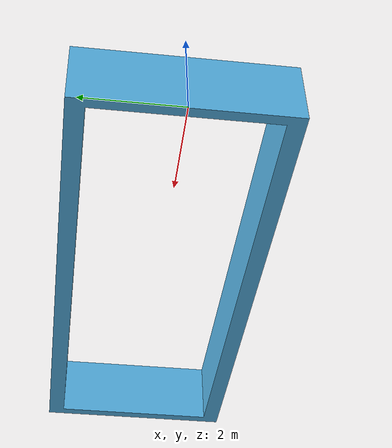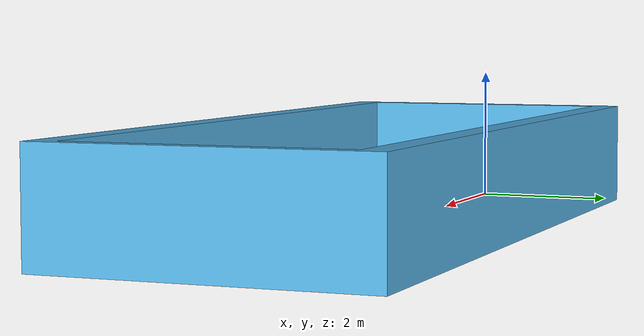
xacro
<?xml version="1.0"?>
<robot xmlns:xacro="http://www.ros.org/wiki/xacro"
       name="line_passage_spawn_obstacle">

  <xacro:include filename="$(find cob_gazebo_worlds)/urdf/common.xacro" />

  <xacro:macro name="line_passage_spawn_obstacle" params="name">

    <link name="world"/>

    <link name="world_link">
      <xacro:default_inertial/>
      <visual>
        <origin xyz="0 0 0" />
        <geometry>
          <mesh filename="package://msh_gazebo_worlds/Media/models/line_passage_spawn_obstacle.STL" />
        </geometry>
      </visual>
      <collision>
        <origin xyz="0 0 0" />
        <geometry>
          <mesh filename="package://msh_gazebo_worlds/Media/models/line_passage_spawn_obstacle.STL" />
        </geometry>
      </collision>
    </link>

    <joint name="world_joint" type="fixed">
      <origin xyz="0 0 0" rpy="0 0 0" />
      <parent link="world" />
      <child link="world_link" />
    </joint>

  </xacro:macro>

  <xacro:line_passage_spawn_obstacle name="line_passage_spawn_obstacle" />

</robot>
